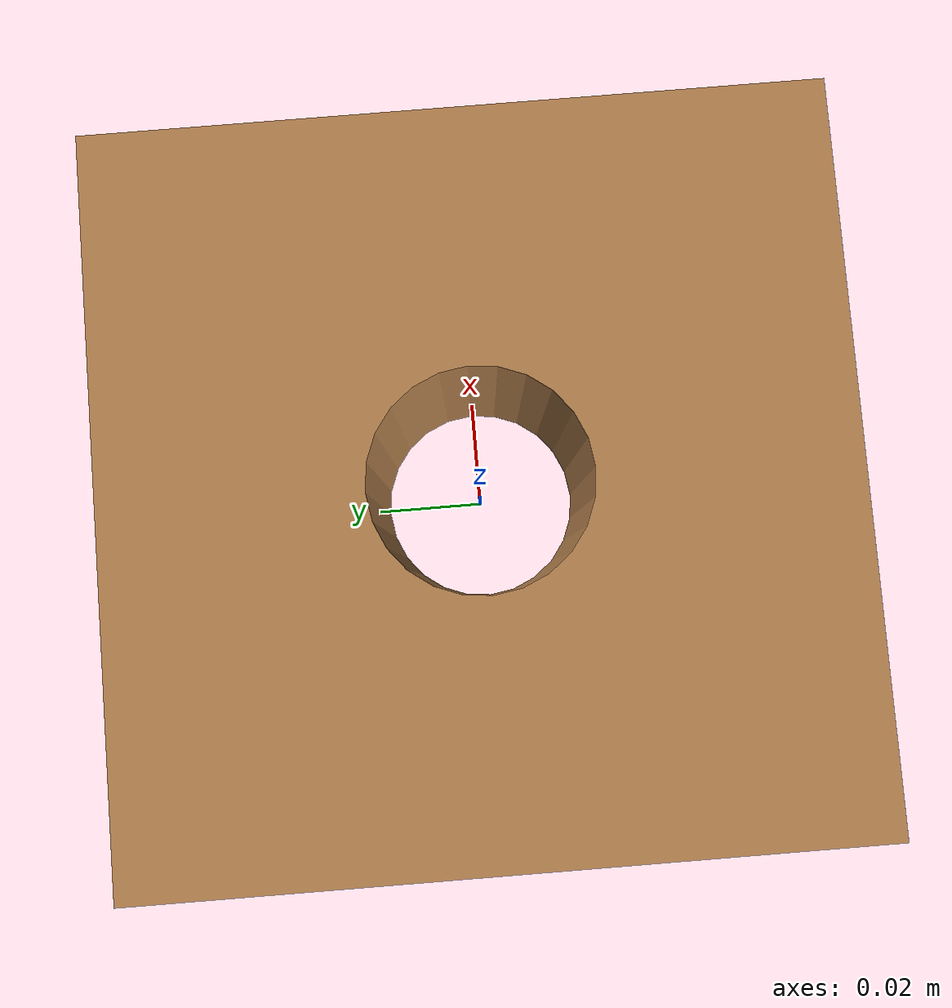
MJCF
<mujoco model="Custom_Hole_18mm">
  <asset>
    <mesh file="../task1_stl_files_correct_pos/Custom_Hole_18mm.stl" name="hole mesh" scale="0.001 0.001 0.001"/>
    <texture file="../textures/red-wood.png" type="2d" name="tex-hole" />
    <material name="hole" reflectance="0.7" texrepeat="15 15" texture="tex-hole" texuniform="true"/>
  </asset>
  <worldbody>
    <body>
      <body name="object">
        <geom pos="0 0 0" mesh="hole mesh" type="mesh" solimp="0.998 0.998 0.001" solref="0.001 1" density="50" friction="0.95 0.3 0.1"  material="hole" group="0" condim="4"/>
      </body>
        <site rgba="0 0 0 0" size="0.005" pos="0 0 0" name="bottom_site"/>
        <site rgba="0 0 0 0" size="0.005" pos="0 0 0.05" name="top_site"/>
        <site rgba="0 0 0 0" size="0.005" pos="-0.03 -0.03 0" name="horizontal_radius_site"/>
    </body>
  </worldbody>
</mujoco>
